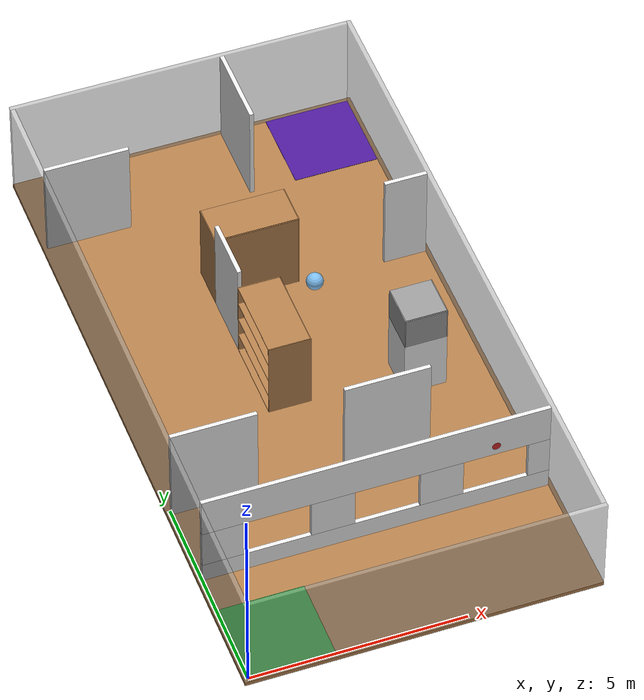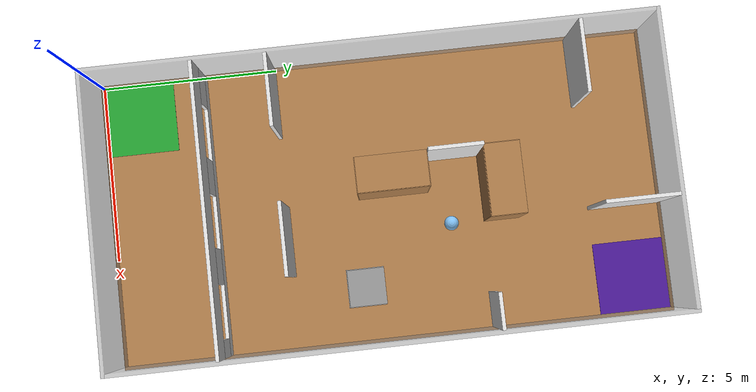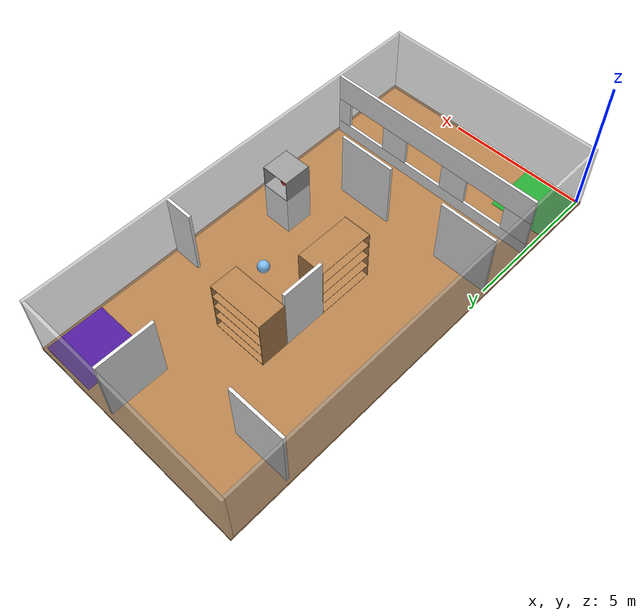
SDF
<sdf version="1.5">
 <world name="default">
  <include><uri>model://sun</uri></include>
  <physics name="default_physics" default="0" type="ode">
   <gravity>0 0 -9.8066</gravity>
   <ode>
    <solver>
     <type>quick</type>
     <iters>10</iters>
     <sor>1.3</sor>
     <use_dynamic_moi_rescaling>0</use_dynamic_moi_rescaling>
    </solver>
    <constraints>
     <cfm>0</cfm>
     <erp>0.2</erp>
     <contact_max_correcting_vel>100</contact_max_correcting_vel>
     <contact_surface_layer>0.001</contact_surface_layer>
    </constraints>
   </ode>
   <max_step_size>0.004</max_step_size>
   <real_time_factor>1</real_time_factor>
   <real_time_update_rate>250</real_time_update_rate>
   <magnetic_field>6.0e-6 2.3e-5 -4.2e-5</magnetic_field>
  </physics>
  <model name="box_1">
   <pose>4.05 -0.05 1.25  0 0 0</pose>
   <static>true</static>
   <link name="link">
    <collision name="collision"><geometry><box><size>8.1 0.1 2.5</size></box></geometry></collision>
    <visual name="visual">
     <geometry><box><size>8.1 0.1 2.5</size></box></geometry>
     <material>
      <script><name>Gazebo/GreyTransparent</name><uri>file://media/materials/scripts/gazebo.material</uri></script>
     </material>
    </visual>
   </link>
  </model>
  <model name="box_2">
   <pose>8.05 7.8 1.25  0 0 0</pose>
   <static>true</static>
   <link name="link">
    <collision name="collision"><geometry><box><size>0.1 15.6 2.5</size></box></geometry></collision>
    <visual name="visual">
     <geometry><box><size>0.1 15.6 2.5</size></box></geometry>
     <material>
      <script><name>Gazebo/GreyTransparent</name><uri>file://media/materials/scripts/gazebo.material</uri></script>
     </material>
    </visual>
   </link>
  </model>
  <model name="box_3">
   <pose>3.95 15.55 1.25  0 0 0</pose>
   <static>true</static>
   <link name="link">
    <collision name="collision"><geometry><box><size>8.1 0.1 2.5</size></box></geometry></collision>
    <visual name="visual">
     <geometry><box><size>8.1 0.1 2.5</size></box></geometry>
     <material>
      <script><name>Gazebo/GreyTransparent</name><uri>file://media/materials/scripts/gazebo.material</uri></script>
     </material>
    </visual>
   </link>
  </model>
  <model name="box_4">
   <pose>-0.05 7.7 1.25  0 0 0</pose>
   <static>true</static>
   <link name="link">
    <collision name="collision"><geometry><box><size>0.1 15.6 2.5</size></box></geometry></collision>
    <visual name="visual">
     <geometry><box><size>0.1 15.6 2.5</size></box></geometry>
     <material>
      <script><name>Gazebo/GreyTransparent</name><uri>file://media/materials/scripts/gazebo.material</uri></script>
     </material>
    </visual>
   </link>
  </model>
  <model name="box_5">
   <pose>4.0 7.75 -0.05  0 0 0</pose>
   <static>true</static>
   <link name="link">
    <collision name="collision"><geometry><box><size>8.2 15.7 0.1</size></box></geometry></collision>
    <visual name="visual">
     <geometry><box><size>8.2 15.7 0.1</size></box></geometry>
     <material>
      <script><name>Gazebo/WoodFloor</name><uri>file://media/materials/scripts/gazebo.material</uri></script>
     </material>
    </visual>
   </link>
  </model>
  <include>
   <name>shelf_1</name>
   <uri>model://shelf_2x1x2_4l</uri>
   <pose>3.5 8.0 0.0  0 0 4.71238898038</pose>
  </include>
  <include>
   <name>shelf_2</name>
   <uri>model://shelf_2x1x2_4l</uri>
   <pose>4.0 11.0 0.0  0 0 3.14159265359</pose>
  </include>
  <model name="box_6">
   <pose>1.0 4.95 1.25  0 0 0</pose>
   <static>true</static>
   <link name="link">
    <collision name="collision"><geometry><box><size>2.0 0.1 2.5</size></box></geometry></collision>
    <visual name="visual">
     <geometry><box><size>2.0 0.1 2.5</size></box></geometry>
     <material>
      <script><name>Gazebo/White</name><uri>file://media/materials/scripts/gazebo.material</uri></script>
     </material>
    </visual>
   </link>
  </model>
  <model name="box_7">
   <pose>5.0 4.95 1.25  0 0 0</pose>
   <static>true</static>
   <link name="link">
    <collision name="collision"><geometry><box><size>2.0 0.1 2.5</size></box></geometry></collision>
    <visual name="visual">
     <geometry><box><size>2.0 0.1 2.5</size></box></geometry>
     <material>
      <script><name>Gazebo/White</name><uri>file://media/materials/scripts/gazebo.material</uri></script>
     </material>
    </visual>
   </link>
  </model>
  <model name="box_8">
   <pose>3.05 9.75 1.25  0 0 0</pose>
   <static>true</static>
   <link name="link">
    <collision name="collision"><geometry><box><size>0.1 1.5 2.5</size></box></geometry></collision>
    <visual name="visual">
     <geometry><box><size>0.1 1.5 2.5</size></box></geometry>
     <material>
      <script><name>Gazebo/White</name><uri>file://media/materials/scripts/gazebo.material</uri></script>
     </material>
    </visual>
   </link>
  </model>
  <model name="box_9">
   <pose>1.0 13.45 1.25  0 0 0</pose>
   <static>true</static>
   <link name="link">
    <collision name="collision"><geometry><box><size>2.0 0.1 2.5</size></box></geometry></collision>
    <visual name="visual">
     <geometry><box><size>2.0 0.1 2.5</size></box></geometry>
     <material>
      <script><name>Gazebo/White</name><uri>file://media/materials/scripts/gazebo.material</uri></script>
     </material>
    </visual>
   </link>
  </model>
  <model name="box_10">
   <pose>7.5 10.45 1.25  0 0 0</pose>
   <static>true</static>
   <link name="link">
    <collision name="collision"><geometry><box><size>1.0 0.1 2.5</size></box></geometry></collision>
    <visual name="visual">
     <geometry><box><size>1.0 0.1 2.5</size></box></geometry>
     <material>
      <script><name>Gazebo/White</name><uri>file://media/materials/scripts/gazebo.material</uri></script>
     </material>
    </visual>
   </link>
  </model>
  <model name="box_11">
   <pose>4.95 14.5 1.25  0 0 0</pose>
   <static>true</static>
   <link name="link">
    <collision name="collision"><geometry><box><size>0.1 2.0 2.5</size></box></geometry></collision>
    <visual name="visual">
     <geometry><box><size>0.1 2.0 2.5</size></box></geometry>
     <material>
      <script><name>Gazebo/White</name><uri>file://media/materials/scripts/gazebo.material</uri></script>
     </material>
    </visual>
   </link>
  </model>
  <model name="box_12">
   <pose>6.5 7.0 0.75  0 0 0</pose>
   <static>true</static>
   <link name="link">
    <collision name="collision"><geometry><box><size>1.0 1.0 1.5</size></box></geometry></collision>
    <visual name="visual">
     <geometry><box><size>1.0 1.0 1.5</size></box></geometry>
     <material>
      <script><name>Gazebo/White</name><uri>file://media/materials/scripts/gazebo.material</uri></script>
     </material>
    </visual>
   </link>
  </model>
  <include>
   <name>shelf_3</name>
   <uri>model://shelf_1x1x.8_1l</uri>
   <pose>6.5 7.0 1.5  0 0 3.14159265359</pose>
  </include>
  <model name="box_13">
   <pose>1.0 1.0 0.005  0 0 0</pose>
   <static>true</static>
   <link name="link">
    <collision name="collision"><geometry><box><size>2.0 2.0 0.01</size></box></geometry></collision>
    <visual name="visual">
     <geometry><box><size>2.0 2.0 0.01</size></box></geometry>
     <material>
      <script><name>Gazebo/Green</name><uri>file://media/materials/scripts/gazebo.material</uri></script>
     </material>
    </visual>
   </link>
  </model>
  <model name="box_14">
   <pose>7.0 14.5 0.005  0 0 0</pose>
   <static>true</static>
   <link name="link">
    <collision name="collision"><geometry><box><size>2.0 2.0 0.01</size></box></geometry></collision>
    <visual name="visual">
     <geometry><box><size>2.0 2.0 0.01</size></box></geometry>
     <material>
      <script><name>Gazebo/Indigo</name><uri>file://media/materials/scripts/gazebo.material</uri></script>
     </material>
    </visual>
   </link>
  </model>
  <model name="box_15">
   <pose>4.0 2.95 0.25  0 0 0</pose>
   <static>true</static>
   <link name="link">
    <collision name="collision"><geometry><box><size>8.0 0.1 0.5</size></box></geometry></collision>
    <visual name="visual">
     <geometry><box><size>8.0 0.1 0.5</size></box></geometry>
     <material>
      <script><name>Gazebo/White</name><uri>file://media/materials/scripts/gazebo.material</uri></script>
     </material>
    </visual>
   </link>
  </model>
  <model name="box_16">
   <pose>4.0 2.95 2.0  0 0 0</pose>
   <static>true</static>
   <link name="link">
    <collision name="collision"><geometry><box><size>8.0 0.1 1.0</size></box></geometry></collision>
    <visual name="visual">
     <geometry><box><size>8.0 0.1 1.0</size></box></geometry>
     <material>
      <script><name>Gazebo/White</name><uri>file://media/materials/scripts/gazebo.material</uri></script>
     </material>
    </visual>
   </link>
  </model>
  <model name="box_17">
   <pose>0.5 2.95 1.0  0 0 0</pose>
   <static>true</static>
   <link name="link">
    <collision name="collision"><geometry><box><size>1.0 0.1 1.0</size></box></geometry></collision>
    <visual name="visual">
     <geometry><box><size>1.0 0.1 1.0</size></box></geometry>
     <material>
      <script><name>Gazebo/White</name><uri>file://media/materials/scripts/gazebo.material</uri></script>
     </material>
    </visual>
   </link>
  </model>
  <model name="box_18">
   <pose>3.0 2.95 1.0  0 0 0</pose>
   <static>true</static>
   <link name="link">
    <collision name="collision"><geometry><box><size>1.0 0.1 1.0</size></box></geometry></collision>
    <visual name="visual">
     <geometry><box><size>1.0 0.1 1.0</size></box></geometry>
     <material>
      <script><name>Gazebo/White</name><uri>file://media/materials/scripts/gazebo.material</uri></script>
     </material>
    </visual>
   </link>
  </model>
  <model name="box_19">
   <pose>5.5 2.95 1.0  0 0 0</pose>
   <static>true</static>
   <link name="link">
    <collision name="collision"><geometry><box><size>1.0 0.1 1.0</size></box></geometry></collision>
    <visual name="visual">
     <geometry><box><size>1.0 0.1 1.0</size></box></geometry>
     <material>
      <script><name>Gazebo/White</name><uri>file://media/materials/scripts/gazebo.material</uri></script>
     </material>
    </visual>
   </link>
  </model>
  <model name="box_20">
   <pose>7.75 2.95 1.0  0 0 0</pose>
   <static>true</static>
   <link name="link">
    <collision name="collision"><geometry><box><size>0.5 0.1 1.0</size></box></geometry></collision>
    <visual name="visual">
     <geometry><box><size>0.5 0.1 1.0</size></box></geometry>
     <material>
      <script><name>Gazebo/White</name><uri>file://media/materials/scripts/gazebo.material</uri></script>
     </material>
    </visual>
   </link>
  </model>
  <model name="cylinder_1">
   <pose>6.75 2.9 1.75  1.57079632679 0 0</pose>
   <static>true</static>
   <link name="link">
    <visual name="visual">
     <geometry><cylinder><radius>0.1</radius><length>0.002</length></cylinder></geometry>
     <material>
      <script><name>Gazebo/Red</name><uri>file://media/materials/scripts/gazebo.material</uri></script>
     </material>
    </visual>
   </link>
  </model>
  <model name="box_21">
   <pose>1.75 2.95 1.0  0 0 0</pose>
   <static>true</static>
   <link name="link">
    <collision name="collision"><geometry><box><size>1.5 0.1 1.0</size></box></geometry></collision>
    <visual name="visual">
     <geometry><box><size>1.5 0.1 1.0</size></box></geometry>
     <material>
      <script><name>Gazebo/Grey</name><uri>file://media/materials/scripts/gazebo.material</uri></script>
     </material>
     <transparency>1.0</transparency>
    </visual>
   </link>
  </model>
  <model name="box_22">
   <pose>4.25 2.95 1.0  0 0 0</pose>
   <static>true</static>
   <link name="link">
    <collision name="collision"><geometry><box><size>1.5 0.1 1.0</size></box></geometry></collision>
    <visual name="visual">
     <geometry><box><size>1.5 0.1 1.0</size></box></geometry>
     <material>
      <script><name>Gazebo/Grey</name><uri>file://media/materials/scripts/gazebo.material</uri></script>
     </material>
     <transparency>1.0</transparency>
    </visual>
   </link>
  </model>
  <model name="sphere_1">
   <pose>6.5 7 1.72  0 0 0</pose>
   <static>true</static>
   <link name="link">
    <collision name="collision"><geometry><sphere><radius>0.2</radius></sphere></geometry></collision>
    <visual name="visual">
     <geometry><sphere><radius>0.2</radius></sphere></geometry>
     <material>
      <script><name>Gazebo/Red</name><uri>file://media/materials/scripts/gazebo.material</uri></script>
     </material>
    </visual>
   </link>
  </model>
  <model name="sphere_2">
   <pose>3.5 7.5 0.72  0 0 0</pose>
   <static>true</static>
   <link name="link">
    <collision name="collision"><geometry><sphere><radius>0.2</radius></sphere></geometry></collision>
    <visual name="visual">
     <geometry><sphere><radius>0.2</radius></sphere></geometry>
     <material>
      <script><name>Gazebo/Yellow</name><uri>file://media/materials/scripts/gazebo.material</uri></script>
     </material>
    </visual>
   </link>
  </model>
  <model name="sphere_3">
   <pose>5 9.5 1  0 0 0</pose>
   <static>true</static>
   <link name="link">
    <collision name="collision"><geometry><sphere><radius>0.2</radius></sphere></geometry></collision>
    <visual name="visual">
     <geometry><sphere><radius>0.2</radius></sphere></geometry>
     <material>
      <script><name>Gazebo/SkyBlue</name><uri>file://media/materials/scripts/gazebo.material</uri></script>
     </material>
    </visual>
   </link>
  </model>
 </world>
</sdf>

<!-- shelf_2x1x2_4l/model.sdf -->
<sdf version="1.5">
  <model name="shelf_2x1x2_4l">
    <static>true</static>
    <link name="link">

      <collision name="box_1">
        <pose>-0.99 0.0 1.01  0 0 0</pose>
        <geometry>
          <box>
            <size>0.020000000000000018 1.0 2.02 </size>
          </box>
        </geometry>
      </collision>
      <visual name="box_1">
        <pose>-0.99 0.0 1.01  0 0 0</pose>
        <geometry>
          <box>
            <size>0.020000000000000018 1.0 2.02 </size>
          </box>
        </geometry>
        <material>
          <script>
            <name>Gazebo/Wood</name>
            <uri>file://media/materials/scripts/gazebo.material</uri>
          </script>
        </material>
      </visual>

      <collision name="box_2">
        <pose>0.99 0.0 1.01  0 0 0</pose>
        <geometry>
          <box>
            <size>0.020000000000000018 1.0 2.02 </size>
          </box>
        </geometry>
      </collision>
      <visual name="box_2">
        <pose>0.99 0.0 1.01  0 0 0</pose>
        <geometry>
          <box>
            <size>0.020000000000000018 1.0 2.02 </size>
          </box>
        </geometry>
        <material>
          <script>
            <name>Gazebo/Wood</name>
            <uri>file://media/materials/scripts/gazebo.material</uri>
          </script>
        </material>
      </visual>

      <collision name="box_3">
        <pose>0.0 0.49 1.0  0 0 0</pose>
        <geometry>
          <box>
            <size>1.96 0.020000000000000018 2.0 </size>
          </box>
        </geometry>
      </collision>
      <visual name="box_3">
        <pose>0.0 0.49 1.0  0 0 0</pose>
        <geometry>
          <box>
            <size>1.96 0.020000000000000018 2.0 </size>
          </box>
        </geometry>
        <material>
          <script>
            <name>Gazebo/Wood</name>
            <uri>file://media/materials/scripts/gazebo.material</uri>
          </script>
        </material>
      </visual>

      <collision name="box_4">
        <pose>0.0 -0.010000000000000009 0.01  0 0 0</pose>
        <geometry>
          <box>
            <size>1.96 0.98 0.02 </size>
          </box>
        </geometry>
      </collision>
      <visual name="box_4">
        <pose>0.0 -0.010000000000000009 0.01  0 0 0</pose>
        <geometry>
          <box>
            <size>1.96 0.98 0.02 </size>
          </box>
        </geometry>
        <material>
          <script>
            <name>Gazebo/Wood</name>
            <uri>file://media/materials/scripts/gazebo.material</uri>
          </script>
        </material>
      </visual>

      <collision name="box_5">
        <pose>0.0 -0.010000000000000009 0.51  0 0 0</pose>
        <geometry>
          <box>
            <size>1.96 0.98 0.020000000000000018 </size>
          </box>
        </geometry>
      </collision>
      <visual name="box_5">
        <pose>0.0 -0.010000000000000009 0.51  0 0 0</pose>
        <geometry>
          <box>
            <size>1.96 0.98 0.020000000000000018 </size>
          </box>
        </geometry>
        <material>
          <script>
            <name>Gazebo/Wood</name>
            <uri>file://media/materials/scripts/gazebo.material</uri>
          </script>
        </material>
      </visual>

      <collision name="box_6">
        <pose>0.0 -0.010000000000000009 1.01  0 0 0</pose>
        <geometry>
          <box>
            <size>1.96 0.98 0.020000000000000018 </size>
          </box>
        </geometry>
      </collision>
      <visual name="box_6">
        <pose>0.0 -0.010000000000000009 1.01  0 0 0</pose>
        <geometry>
          <box>
            <size>1.96 0.98 0.020000000000000018 </size>
          </box>
        </geometry>
        <material>
          <script>
            <name>Gazebo/Wood</name>
            <uri>file://media/materials/scripts/gazebo.material</uri>
          </script>
        </material>
      </visual>

      <collision name="box_7">
        <pose>0.0 -0.010000000000000009 1.51  0 0 0</pose>
        <geometry>
          <box>
            <size>1.96 0.98 0.020000000000000018 </size>
          </box>
        </geometry>
      </collision>
      <visual name="box_7">
        <pose>0.0 -0.010000000000000009 1.51  0 0 0</pose>
        <geometry>
          <box>
            <size>1.96 0.98 0.020000000000000018 </size>
          </box>
        </geometry>
        <material>
          <script>
            <name>Gazebo/Wood</name>
            <uri>file://media/materials/scripts/gazebo.material</uri>
          </script>
        </material>
      </visual>

      <collision name="box_8">
        <pose>0.0 -0.010000000000000009 2.01  0 0 0</pose>
        <geometry>
          <box>
            <size>1.96 0.98 0.020000000000000018 </size>
          </box>
        </geometry>
      </collision>
      <visual name="box_8">
        <pose>0.0 -0.010000000000000009 2.01  0 0 0</pose>
        <geometry>
          <box>
            <size>1.96 0.98 0.020000000000000018 </size>
          </box>
        </geometry>
        <material>
          <script>
            <name>Gazebo/Wood</name>
            <uri>file://media/materials/scripts/gazebo.material</uri>
          </script>
        </material>
      </visual>

    </link>
  </model>
</sdf>

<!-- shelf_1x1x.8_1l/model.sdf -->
<sdf version="1.5">
  <model name="shelf_1x1x.8_1l">
    <static>true</static>
    <link name="link">

      <collision name="box_1">
        <pose>-0.49 0.0 0.41000000000000003  0 0 0</pose>
        <geometry>
          <box>
            <size>0.020000000000000018 1.0 0.8200000000000001 </size>
          </box>
        </geometry>
      </collision>
      <visual name="box_1">
        <pose>-0.49 0.0 0.41000000000000003  0 0 0</pose>
        <geometry>
          <box>
            <size>0.020000000000000018 1.0 0.8200000000000001 </size>
          </box>
        </geometry>
        <material>
          <script>
            <name>Gazebo/Grey</name>
            <uri>file://media/materials/scripts/gazebo.material</uri>
          </script>
        </material>
      </visual>

      <collision name="box_2">
        <pose>0.49 0.0 0.41000000000000003  0 0 0</pose>
        <geometry>
          <box>
            <size>0.020000000000000018 1.0 0.8200000000000001 </size>
          </box>
        </geometry>
      </collision>
      <visual name="box_2">
        <pose>0.49 0.0 0.41000000000000003  0 0 0</pose>
        <geometry>
          <box>
            <size>0.020000000000000018 1.0 0.8200000000000001 </size>
          </box>
        </geometry>
        <material>
          <script>
            <name>Gazebo/Grey</name>
            <uri>file://media/materials/scripts/gazebo.material</uri>
          </script>
        </material>
      </visual>

      <collision name="box_3">
        <pose>0.0 0.49 0.4  0 0 0</pose>
        <geometry>
          <box>
            <size>0.96 0.020000000000000018 0.8 </size>
          </box>
        </geometry>
      </collision>
      <visual name="box_3">
        <pose>0.0 0.49 0.4  0 0 0</pose>
        <geometry>
          <box>
            <size>0.96 0.020000000000000018 0.8 </size>
          </box>
        </geometry>
        <material>
          <script>
            <name>Gazebo/Grey</name>
            <uri>file://media/materials/scripts/gazebo.material</uri>
          </script>
        </material>
      </visual>

      <collision name="box_4">
        <pose>0.0 -0.010000000000000009 0.01  0 0 0</pose>
        <geometry>
          <box>
            <size>0.96 0.98 0.02 </size>
          </box>
        </geometry>
      </collision>
      <visual name="box_4">
        <pose>0.0 -0.010000000000000009 0.01  0 0 0</pose>
        <geometry>
          <box>
            <size>0.96 0.98 0.02 </size>
          </box>
        </geometry>
        <material>
          <script>
            <name>Gazebo/Grey</name>
            <uri>file://media/materials/scripts/gazebo.material</uri>
          </script>
        </material>
      </visual>

      <collision name="box_5">
        <pose>0.0 -0.010000000000000009 0.81  0 0 0</pose>
        <geometry>
          <box>
            <size>0.96 0.98 0.020000000000000018 </size>
          </box>
        </geometry>
      </collision>
      <visual name="box_5">
        <pose>0.0 -0.010000000000000009 0.81  0 0 0</pose>
        <geometry>
          <box>
            <size>0.96 0.98 0.020000000000000018 </size>
          </box>
        </geometry>
        <material>
          <script>
            <name>Gazebo/Grey</name>
            <uri>file://media/materials/scripts/gazebo.material</uri>
          </script>
        </material>
      </visual>

    </link>
  </model>
</sdf>
